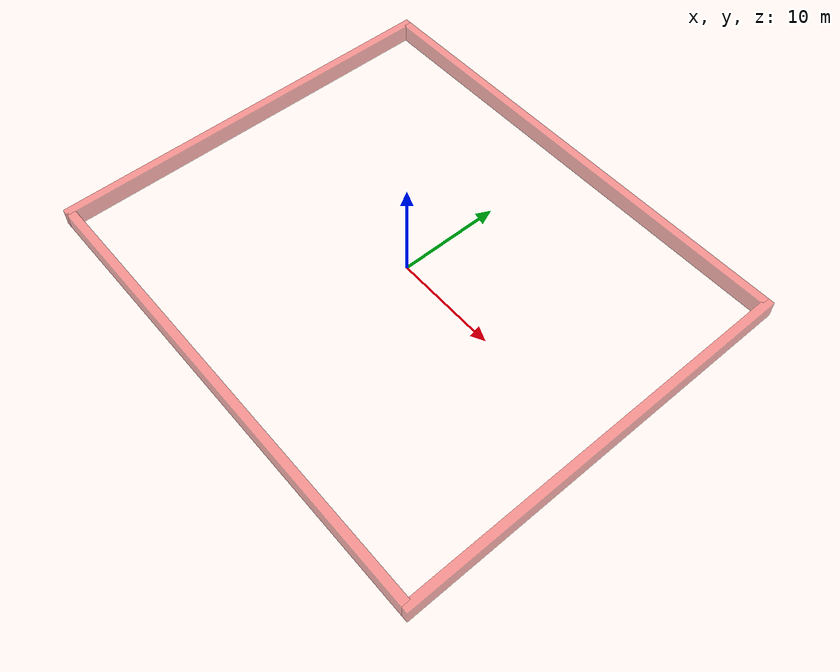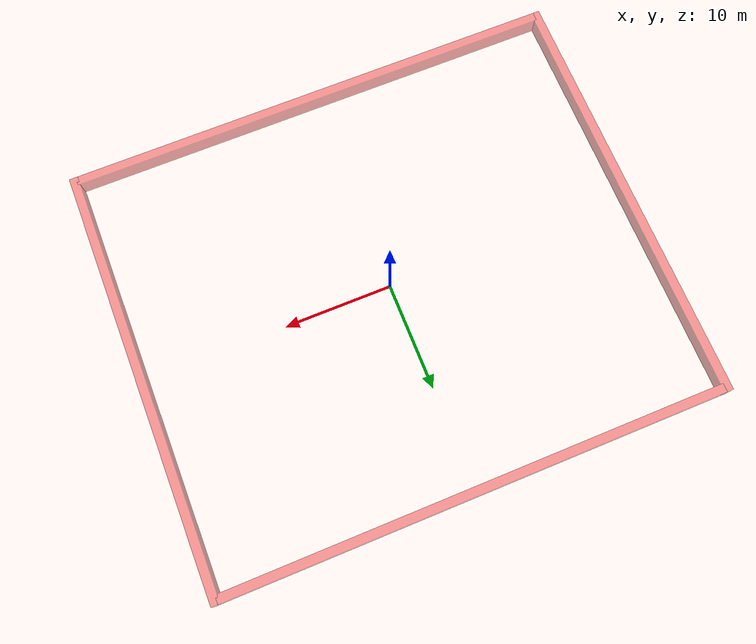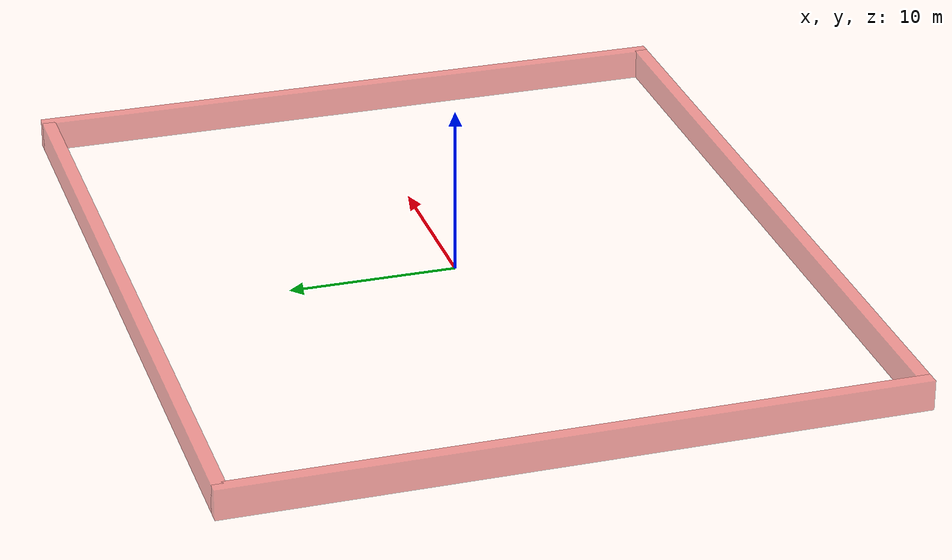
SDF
<sdf version="1.6">
 <world name="marsyard2020_map_only">
  <physics type="ode">
   <max_step_size>0.001</max_step_size>
   <real_time_update_rate>1000</real_time_update_rate>
   <real_time_factor>1.0</real_time_factor>
   <gravity>0 0 -9.8</gravity>
  </physics>
  <model_plugin_loading_timeout>600</model_plugin_loading_timeout>
  <scene>
   <ambient>0.45 0.45 0.45 1</ambient>
   <background>0.75 0.75 0.75 1</background>
   <shadows>true</shadows>
  </scene>
  <include><uri>model://sun</uri></include>
  <model name="boundary_walls">
   <static>true</static>
   <link name="north_wall">
    <pose>0 19.6 0.9 0 0 0</pose>
    <collision name="collision"><geometry><box><size>46 0.8 1.8</size></box></geometry></collision>
    <visual name="visual">
     <geometry><box><size>46 0.8 1.8</size></box></geometry>
     <material><ambient>0.85 0.15 0.15 0.50</ambient><diffuse>0.90 0.20 0.20 0.50</diffuse></material>
    </visual>
   </link>
   <link name="south_wall">
    <pose>0 -19.6 0.9 0 0 0</pose>
    <collision name="collision"><geometry><box><size>46 0.8 1.8</size></box></geometry></collision>
    <visual name="visual">
     <geometry><box><size>46 0.8 1.8</size></box></geometry>
     <material><ambient>0.85 0.15 0.15 0.50</ambient><diffuse>0.90 0.20 0.20 0.50</diffuse></material>
    </visual>
   </link>
   <link name="east_wall">
    <pose>23.2 0 0.9 0 0 0</pose>
    <collision name="collision"><geometry><box><size>0.8 40 1.8</size></box></geometry></collision>
    <visual name="visual">
     <geometry><box><size>0.8 40 1.8</size></box></geometry>
     <material><ambient>0.85 0.15 0.15 0.50</ambient><diffuse>0.90 0.20 0.20 0.50</diffuse></material>
    </visual>
   </link>
   <link name="west_wall">
    <pose>-23.2 0 0.9 0 0 0</pose>
    <collision name="collision"><geometry><box><size>0.8 40 1.8</size></box></geometry></collision>
    <visual name="visual">
     <geometry><box><size>0.8 40 1.8</size></box></geometry>
     <material><ambient>0.85 0.15 0.15 0.50</ambient><diffuse>0.90 0.20 0.20 0.50</diffuse></material>
    </visual>
   </link>
  </model>
 </world>
</sdf>
